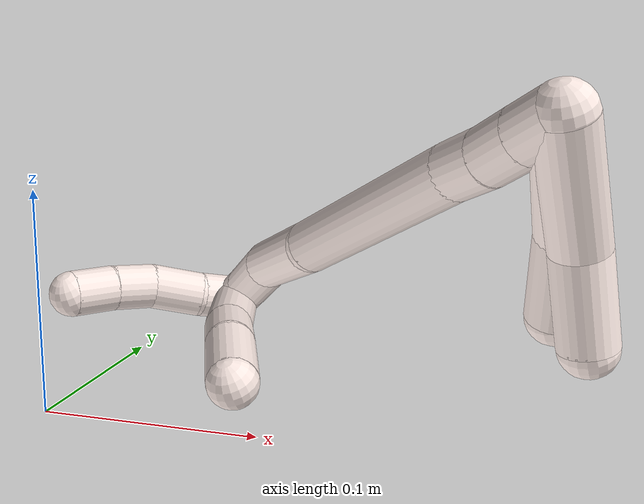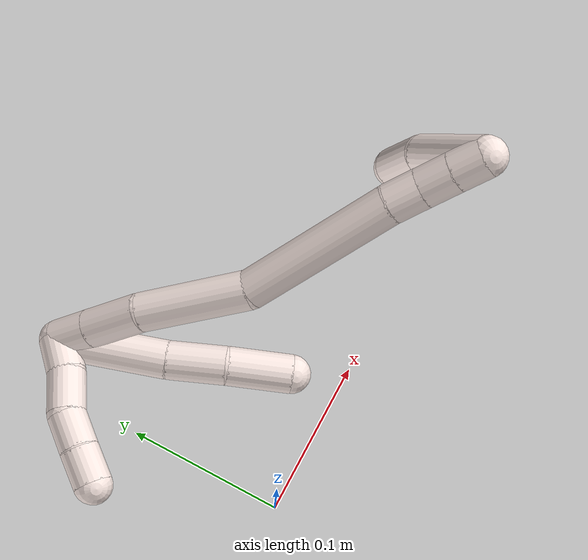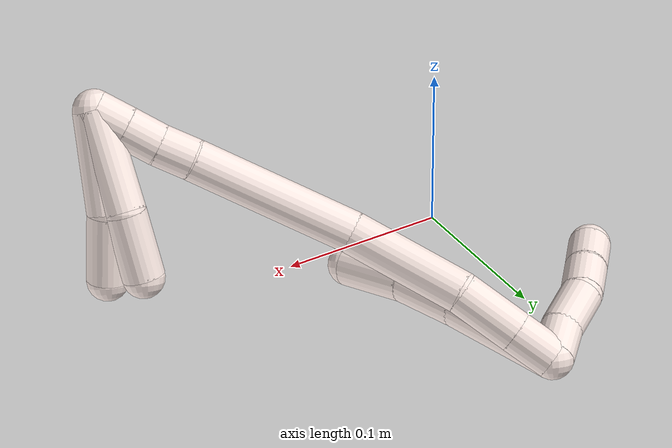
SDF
<sdf version="1.7">
 <world name="default">
  <model name="11">
   <static>0</static>
   <link name="11">
    <collision name="collision-cylinder-e_1_2_8">
     <pose>0.010992 -0.030919 0.013662 1.15473 0.314388 0.20577</pose>
     <geometry><cylinder><radius>0.0125</radius><length>0.071089</length></cylinder></geometry>
     <surface>
      <friction><ode><mu>1.16</mu><mu2>1.16</mu2><slip1>0</slip1><slip2>0</slip2></ode></friction>
      <contact><ode><kp>1e+06</kp><kd>1</kd><max_vel>0</max_vel><min_depth>0.001</min_depth></ode></contact>
     </surface>
    </collision>
    <visual name="visual-cylinder-e_1_2_8">
     <pose>0.010992 -0.030919 0.013662 1.15473 0.314388 0.20577</pose>
     <geometry><cylinder><radius>0.0125</radius><length>0.071089</length></cylinder></geometry>
     <material><ambient>1 0.933333 0.909804 1</ambient></material>
    </visual>
    <collision name="collision-cylinder-e_2_8_9">
     <pose>0.029365 -0.077707 0.034415 1.15055 0.401577 0.262436</pose>
     <geometry><cylinder><radius>0.0125</radius><length>0.03777</length></cylinder></geometry>
     <surface>
      <friction><ode><mu>1.16</mu><mu2>1.16</mu2><slip1>0</slip1><slip2>0</slip2></ode></friction>
      <contact><ode><kp>1e+06</kp><kd>1</kd><max_vel>0</max_vel><min_depth>0.001</min_depth></ode></contact>
     </surface>
    </collision>
    <visual name="visual-cylinder-e_2_8_9">
     <pose>0.029365 -0.077707 0.034415 1.15055 0.401577 0.262436</pose>
     <geometry><cylinder><radius>0.0125</radius><length>0.03777</length></cylinder></geometry>
     <material><ambient>1 0.933333 0.909804 1</ambient></material>
    </visual>
    <collision name="collision-cylinder-e_3_9_6">
     <pose>0.044262 -0.112207 0.045931 1.33765 0.374038 0.296912</pose>
     <geometry><cylinder><radius>0.0125</radius><length>0.041141</length></cylinder></geometry>
     <surface>
      <friction><ode><mu>1.16</mu><mu2>1.16</mu2><slip1>0</slip1><slip2>0</slip2></ode></friction>
      <contact><ode><kp>1e+06</kp><kd>1</kd><max_vel>0</max_vel><min_depth>0.001</min_depth></ode></contact>
     </surface>
    </collision>
    <visual name="visual-cylinder-e_3_9_6">
     <pose>0.044262 -0.112207 0.045931 1.33765 0.374038 0.296912</pose>
     <geometry><cylinder><radius>0.0125</radius><length>0.041141</length></cylinder></geometry>
     <material><ambient>1 0.933333 0.909804 1</ambient></material>
    </visual>
    <collision name="collision-cylinder-e_1_2_10">
     <pose>-0.007813 -0.005994 0.006833 0.720108 -0.710006 -0.277326</pose>
     <geometry><cylinder><radius>0.0125</radius><length>0.023972</length></cylinder></geometry>
     <surface>
      <friction><ode><mu>1.16</mu><mu2>1.16</mu2><slip1>0</slip1><slip2>0</slip2></ode></friction>
      <contact><ode><kp>1e+06</kp><kd>1</kd><max_vel>0</max_vel><min_depth>0.001</min_depth></ode></contact>
     </surface>
    </collision>
    <visual name="visual-cylinder-e_1_2_10">
     <pose>-0.007813 -0.005994 0.006833 0.720108 -0.710006 -0.277326</pose>
     <geometry><cylinder><radius>0.0125</radius><length>0.023972</length></cylinder></geometry>
     <material><ambient>1 0.933333 0.909804 1</ambient></material>
    </visual>
    <collision name="collision-cylinder-e_2_10_11">
     <pose>-0.026612 -0.016645 0.021485 0.53712 -0.879041 -0.257373</pose>
     <geometry><cylinder><radius>0.0125</radius><length>0.028532</length></cylinder></geometry>
     <surface>
      <friction><ode><mu>1.16</mu><mu2>1.16</mu2><slip1>0</slip1><slip2>0</slip2></ode></friction>
      <contact><ode><kp>1e+06</kp><kd>1</kd><max_vel>0</max_vel><min_depth>0.001</min_depth></ode></contact>
     </surface>
    </collision>
    <visual name="visual-cylinder-e_2_10_11">
     <pose>-0.026612 -0.016645 0.021485 0.53712 -0.879041 -0.257373</pose>
     <geometry><cylinder><radius>0.0125</radius><length>0.028532</length></cylinder></geometry>
     <material><ambient>1 0.933333 0.909804 1</ambient></material>
    </visual>
    <collision name="collision-cylinder-e_3_11_12">
     <pose>-0.044871 -0.02876 0.035125 0.908088 -0.655295 -0.328782</pose>
     <geometry><cylinder><radius>0.0125</radius><length>0.023866</length></cylinder></geometry>
     <surface>
      <friction><ode><mu>1.16</mu><mu2>1.16</mu2><slip1>0</slip1><slip2>0</slip2></ode></friction>
      <contact><ode><kp>1e+06</kp><kd>1</kd><max_vel>0</max_vel><min_depth>0.001</min_depth></ode></contact>
     </surface>
    </collision>
    <visual name="visual-cylinder-e_3_11_12">
     <pose>-0.044871 -0.02876 0.035125 0.908088 -0.655295 -0.328782</pose>
     <geometry><cylinder><radius>0.0125</radius><length>0.023866</length></cylinder></geometry>
     <material><ambient>1 0.933333 0.909804 1</ambient></material>
    </visual>
    <collision name="collision-cylinder-e_4_12_5">
     <pose>-0.059386 -0.044171 0.045832 1.01988 -0.659934 -0.378507</pose>
     <geometry><cylinder><radius>0.0125</radius><length>0.02363</length></cylinder></geometry>
     <surface>
      <friction><ode><mu>1.16</mu><mu2>1.16</mu2><slip1>0</slip1><slip2>0</slip2></ode></friction>
      <contact><ode><kp>1e+06</kp><kd>1</kd><max_vel>0</max_vel><min_depth>0.001</min_depth></ode></contact>
     </surface>
    </collision>
    <visual name="visual-cylinder-e_4_12_5">
     <pose>-0.059386 -0.044171 0.045832 1.01988 -0.659934 -0.378507</pose>
     <geometry><cylinder><radius>0.0125</radius><length>0.02363</length></cylinder></geometry>
     <material><ambient>1 0.933333 0.909804 1</ambient></material>
    </visual>
    <collision name="collision-cylinder-e_1_2_13">
     <pose>0.00814 -0.005679 0.008327 0.598561 0.679377 0.217215</pose>
     <geometry><cylinder><radius>0.0125</radius><length>0.025911</length></cylinder></geometry>
     <surface>
      <friction><ode><mu>1.16</mu><mu2>1.16</mu2><slip1>0</slip1><slip2>0</slip2></ode></friction>
      <contact><ode><kp>1e+06</kp><kd>1</kd><max_vel>0</max_vel><min_depth>0.001</min_depth></ode></contact>
     </surface>
    </collision>
    <visual name="visual-cylinder-e_1_2_13">
     <pose>0.00814 -0.005679 0.008327 0.598561 0.679377 0.217215</pose>
     <geometry><cylinder><radius>0.0125</radius><length>0.025911</length></cylinder></geometry>
     <material><ambient>1 0.933333 0.909804 1</ambient></material>
    </visual>
    <collision name="collision-cylinder-e_2_13_14">
     <pose>0.028165 -0.019753 0.029105 0.593217 0.669492 0.211819</pose>
     <geometry><cylinder><radius>0.0125</radius><length>0.038303</length></cylinder></geometry>
     <surface>
      <friction><ode><mu>1.16</mu><mu2>1.16</mu2><slip1>0</slip1><slip2>0</slip2></ode></friction>
      <contact><ode><kp>1e+06</kp><kd>1</kd><max_vel>0</max_vel><min_depth>0.001</min_depth></ode></contact>
     </surface>
    </collision>
    <visual name="visual-cylinder-e_2_13_14">
     <pose>0.028165 -0.019753 0.029105 0.593217 0.669492 0.211819</pose>
     <geometry><cylinder><radius>0.0125</radius><length>0.038303</length></cylinder></geometry>
     <material><ambient>1 0.933333 0.909804 1</ambient></material>
    </visual>
    <collision name="collision-cylinder-e_3_14_15">
     <pose>0.061891 -0.049579 0.060598 0.844377 0.651038 0.300941</pose>
     <geometry><cylinder><radius>0.0125</radius><length>0.072079</length></cylinder></geometry>
     <surface>
      <friction><ode><mu>1.16</mu><mu2>1.16</mu2><slip1>0</slip1><slip2>0</slip2></ode></friction>
      <contact><ode><kp>1e+06</kp><kd>1</kd><max_vel>0</max_vel><min_depth>0.001</min_depth></ode></contact>
     </surface>
    </collision>
    <visual name="visual-cylinder-e_3_14_15">
     <pose>0.061891 -0.049579 0.060598 0.844377 0.651038 0.300941</pose>
     <geometry><cylinder><radius>0.0125</radius><length>0.072079</length></cylinder></geometry>
     <material><ambient>1 0.933333 0.909804 1</ambient></material>
    </visual>
    <collision name="collision-cylinder-e_4_15_16">
     <pose>0.123972 -0.08767 0.1052 0.57762 0.922053 0.293057</pose>
     <geometry><cylinder><radius>0.0125</radius><length>0.101</length></cylinder></geometry>
     <surface>
      <friction><ode><mu>1.16</mu><mu2>1.16</mu2><slip1>0</slip1><slip2>0</slip2></ode></friction>
      <contact><ode><kp>1e+06</kp><kd>1</kd><max_vel>0</max_vel><min_depth>0.001</min_depth></ode></contact>
     </surface>
    </collision>
    <visual name="visual-cylinder-e_4_15_16">
     <pose>0.123972 -0.08767 0.1052 0.57762 0.922053 0.293057</pose>
     <geometry><cylinder><radius>0.0125</radius><length>0.101</length></cylinder></geometry>
     <material><ambient>1 0.933333 0.909804 1</ambient></material>
    </visual>
    <collision name="collision-cylinder-e_5_16_17">
     <pose>0.172336 -0.108831 0.135812 0.727849 0.876445 0.353258</pose>
     <geometry><cylinder><radius>0.0125</radius><length>0.021142</length></cylinder></geometry>
     <surface>
      <friction><ode><mu>1.16</mu><mu2>1.16</mu2><slip1>0</slip1><slip2>0</slip2></ode></friction>
      <contact><ode><kp>1e+06</kp><kd>1</kd><max_vel>0</max_vel><min_depth>0.001</min_depth></ode></contact>
     </surface>
    </collision>
    <visual name="visual-cylinder-e_5_16_17">
     <pose>0.172336 -0.108831 0.135812 0.727849 0.876445 0.353258</pose>
     <geometry><cylinder><radius>0.0125</radius><length>0.021142</length></cylinder></geometry>
     <material><ambient>1 0.933333 0.909804 1</ambient></material>
    </visual>
    <collision name="collision-cylinder-e_6_17_18">
     <pose>0.188301 -0.117482 0.146743 0.614633 0.828109 0.277156</pose>
     <geometry><cylinder><radius>0.0125</radius><length>0.021289</length></cylinder></geometry>
     <surface>
      <friction><ode><mu>1.16</mu><mu2>1.16</mu2><slip1>0</slip1><slip2>0</slip2></ode></friction>
      <contact><ode><kp>1e+06</kp><kd>1</kd><max_vel>0</max_vel><min_depth>0.001</min_depth></ode></contact>
     </surface>
    </collision>
    <visual name="visual-cylinder-e_6_17_18">
     <pose>0.188301 -0.117482 0.146743 0.614633 0.828109 0.277156</pose>
     <geometry><cylinder><radius>0.0125</radius><length>0.021289</length></cylinder></geometry>
     <material><ambient>1 0.933333 0.909804 1</ambient></material>
    </visual>
    <collision name="collision-cylinder-e_7_18_1">
     <pose>0.203613 -0.125679 0.158155 0.631604 0.828464 0.285362</pose>
     <geometry><cylinder><radius>0.0125</radius><length>0.020276</length></cylinder></geometry>
     <surface>
      <friction><ode><mu>1.16</mu><mu2>1.16</mu2><slip1>0</slip1><slip2>0</slip2></ode></friction>
      <contact><ode><kp>1e+06</kp><kd>1</kd><max_vel>0</max_vel><min_depth>0.001</min_depth></ode></contact>
     </surface>
    </collision>
    <visual name="visual-cylinder-e_7_18_1">
     <pose>0.203613 -0.125679 0.158155 0.631604 0.828464 0.285362</pose>
     <geometry><cylinder><radius>0.0125</radius><length>0.020276</length></cylinder></geometry>
     <material><ambient>1 0.933333 0.909804 1</ambient></material>
    </visual>
    <collision name="collision-cylinder-e_1_1_19">
     <pose>0.210266 -0.12834 0.134055 -3.09487 -0.027536 1.06498</pose>
     <geometry><cylinder><radius>0.0125</radius><length>0.05935</length></cylinder></geometry>
     <surface>
      <friction><ode><mu>1.16</mu><mu2>1.16</mu2><slip1>0</slip1><slip2>0</slip2></ode></friction>
      <contact><ode><kp>1e+06</kp><kd>1</kd><max_vel>0</max_vel><min_depth>0.001</min_depth></ode></contact>
     </surface>
    </collision>
    <visual name="visual-cylinder-e_1_1_19">
     <pose>0.210266 -0.12834 0.134055 -3.09487 -0.027536 1.06498</pose>
     <geometry><cylinder><radius>0.0125</radius><length>0.05935</length></cylinder></geometry>
     <material><ambient>1 0.933333 0.909804 1</ambient></material>
    </visual>
    <collision name="collision-cylinder-e_2_19_4">
     <pose>0.208805 -0.132354 0.08484 2.87256 -0.031701 -0.233202</pose>
     <geometry><cylinder><radius>0.0125</radius><length>0.04065</length></cylinder></geometry>
     <surface>
      <friction><ode><mu>1.16</mu><mu2>1.16</mu2><slip1>0</slip1><slip2>0</slip2></ode></friction>
      <contact><ode><kp>1e+06</kp><kd>1</kd><max_vel>0</max_vel><min_depth>0.001</min_depth></ode></contact>
     </surface>
    </collision>
    <visual name="visual-cylinder-e_2_19_4">
     <pose>0.208805 -0.132354 0.08484 2.87256 -0.031701 -0.233202</pose>
     <geometry><cylinder><radius>0.0125</radius><length>0.04065</length></cylinder></geometry>
     <material><ambient>1 0.933333 0.909804 1</ambient></material>
    </visual>
    <collision name="collision-cylinder-e_1_1_20">
     <pose>0.207589 -0.123333 0.134439 -2.9264 -0.116195 0.9879</pose>
     <geometry><cylinder><radius>0.0125</radius><length>0.060283</length></cylinder></geometry>
     <surface>
      <friction><ode><mu>1.16</mu><mu2>1.16</mu2><slip1>0</slip1><slip2>0</slip2></ode></friction>
      <contact><ode><kp>1e+06</kp><kd>1</kd><max_vel>0</max_vel><min_depth>0.001</min_depth></ode></contact>
     </surface>
    </collision>
    <visual name="visual-cylinder-e_1_1_20">
     <pose>0.207589 -0.123333 0.134439 -2.9264 -0.116195 0.9879</pose>
     <geometry><cylinder><radius>0.0125</radius><length>0.060283</length></cylinder></geometry>
     <material><ambient>1 0.933333 0.909804 1</ambient></material>
    </visual>
    <collision name="collision-cylinder-e_2_20_3">
     <pose>0.199618 -0.117715 0.085859 3.1015 -0.227363 -2.79393</pose>
     <geometry><cylinder><radius>0.0125</radius><length>0.039717</length></cylinder></geometry>
     <surface>
      <friction><ode><mu>1.16</mu><mu2>1.16</mu2><slip1>0</slip1><slip2>0</slip2></ode></friction>
      <contact><ode><kp>1e+06</kp><kd>1</kd><max_vel>0</max_vel><min_depth>0.001</min_depth></ode></contact>
     </surface>
    </collision>
    <visual name="visual-cylinder-e_2_20_3">
     <pose>0.199618 -0.117715 0.085859 3.1015 -0.227363 -2.79393</pose>
     <geometry><cylinder><radius>0.0125</radius><length>0.039717</length></cylinder></geometry>
     <material><ambient>1 0.933333 0.909804 1</ambient></material>
    </visual>
    <collision name="collision-sphere-3">
     <pose>0.195142 -0.118491 0.066527 0 -0 0</pose>
     <geometry><sphere><radius>0.0125</radius></sphere></geometry>
     <surface>
      <friction><ode><mu>1.16</mu><mu2>1.16</mu2><slip1>0</slip1><slip2>0</slip2></ode></friction>
      <contact><ode><kp>1e+06</kp><kd>1</kd><max_vel>0</max_vel><min_depth>0.001</min_depth></ode></contact>
     </surface>
    </collision>
    <visual name="visual-sphere-3">
     <pose>0.195142 -0.118491 0.066527 0 -0 0</pose>
     <geometry><sphere><radius>0.0125</radius></sphere></geometry>
     <material><ambient>1 0.933333 0.909804 1</ambient></material>
    </visual>
    <collision name="collision-sphere-20">
     <pose>0.204094 -0.11694 0.105191 0 -0 0</pose>
     <geometry><sphere><radius>0.0125</radius></sphere></geometry>
     <surface>
      <friction><ode><mu>1.16</mu><mu2>1.16</mu2><slip1>0</slip1><slip2>0</slip2></ode></friction>
      <contact><ode><kp>1e+06</kp><kd>1</kd><max_vel>0</max_vel><min_depth>0.001</min_depth></ode></contact>
     </surface>
    </collision>
    <visual name="visual-sphere-20">
     <pose>0.204094 -0.11694 0.105191 0 -0 0</pose>
     <geometry><sphere><radius>0.0125</radius></sphere></geometry>
     <material><ambient>1 0.933333 0.909804 1</ambient></material>
    </visual>
    <collision name="collision-sphere-4">
     <pose>0.208161 -0.137754 0.065256 0 -0 0</pose>
     <geometry><sphere><radius>0.0125</radius></sphere></geometry>
     <surface>
      <friction><ode><mu>1.16</mu><mu2>1.16</mu2><slip1>0</slip1><slip2>0</slip2></ode></friction>
      <contact><ode><kp>1e+06</kp><kd>1</kd><max_vel>0</max_vel><min_depth>0.001</min_depth></ode></contact>
     </surface>
    </collision>
    <visual name="visual-sphere-4">
     <pose>0.208161 -0.137754 0.065256 0 -0 0</pose>
     <geometry><sphere><radius>0.0125</radius></sphere></geometry>
     <material><ambient>1 0.933333 0.909804 1</ambient></material>
    </visual>
    <collision name="collision-sphere-11">
     <pose>-0.037599 -0.021301 0.029303 0 -0 0</pose>
     <geometry><sphere><radius>0.0125</radius></sphere></geometry>
     <surface>
      <friction><ode><mu>1.16</mu><mu2>1.16</mu2><slip1>0</slip1><slip2>0</slip2></ode></friction>
      <contact><ode><kp>1e+06</kp><kd>1</kd><max_vel>0</max_vel><min_depth>0.001</min_depth></ode></contact>
     </surface>
    </collision>
    <visual name="visual-sphere-11">
     <pose>-0.037599 -0.021301 0.029303 0 -0 0</pose>
     <geometry><sphere><radius>0.0125</radius></sphere></geometry>
     <material><ambient>1 0.933333 0.909804 1</ambient></material>
    </visual>
    <collision name="collision-sphere-10">
     <pose>-0.015626 -0.011989 0.013666 0 -0 0</pose>
     <geometry><sphere><radius>0.0125</radius></sphere></geometry>
     <surface>
      <friction><ode><mu>1.16</mu><mu2>1.16</mu2><slip1>0</slip1><slip2>0</slip2></ode></friction>
      <contact><ode><kp>1e+06</kp><kd>1</kd><max_vel>0</max_vel><min_depth>0.001</min_depth></ode></contact>
     </surface>
    </collision>
    <visual name="visual-sphere-10">
     <pose>-0.015626 -0.011989 0.013666 0 -0 0</pose>
     <geometry><sphere><radius>0.0125</radius></sphere></geometry>
     <material><ambient>1 0.933333 0.909804 1</ambient></material>
    </visual>
    <collision name="collision-sphere-6">
     <pose>0.051778 -0.130838 0.050355 0 -0 0</pose>
     <geometry><sphere><radius>0.0125</radius></sphere></geometry>
     <surface>
      <friction><ode><mu>1.16</mu><mu2>1.16</mu2><slip1>0</slip1><slip2>0</slip2></ode></friction>
      <contact><ode><kp>1e+06</kp><kd>1</kd><max_vel>0</max_vel><min_depth>0.001</min_depth></ode></contact>
     </surface>
    </collision>
    <visual name="visual-sphere-6">
     <pose>0.051778 -0.130838 0.050355 0 -0 0</pose>
     <geometry><sphere><radius>0.0125</radius></sphere></geometry>
     <material><ambient>1 0.933333 0.909804 1</ambient></material>
    </visual>
    <collision name="collision-sphere-9">
     <pose>0.036746 -0.093577 0.041507 0 -0 0</pose>
     <geometry><sphere><radius>0.0125</radius></sphere></geometry>
     <surface>
      <friction><ode><mu>1.16</mu><mu2>1.16</mu2><slip1>0</slip1><slip2>0</slip2></ode></friction>
      <contact><ode><kp>1e+06</kp><kd>1</kd><max_vel>0</max_vel><min_depth>0.001</min_depth></ode></contact>
     </surface>
    </collision>
    <visual name="visual-sphere-9">
     <pose>0.036746 -0.093577 0.041507 0 -0 0</pose>
     <geometry><sphere><radius>0.0125</radius></sphere></geometry>
     <material><ambient>1 0.933333 0.909804 1</ambient></material>
    </visual>
    <collision name="collision-sphere-2">
     <geometry><sphere><radius>0.0125</radius></sphere></geometry>
     <surface>
      <friction><ode><mu>1.16</mu><mu2>1.16</mu2><slip1>0</slip1><slip2>0</slip2></ode></friction>
      <contact><ode><kp>1e+06</kp><kd>1</kd><max_vel>0</max_vel><min_depth>0.001</min_depth></ode></contact>
     </surface>
    </collision>
    <visual name="visual-sphere-2">
     <geometry><sphere><radius>0.0125</radius></sphere></geometry>
     <material><ambient>1 0.933333 0.909804 1</ambient></material>
    </visual>
    <collision name="collision-sphere-19">
     <pose>0.209449 -0.126955 0.104424 0 -0 0</pose>
     <geometry><sphere><radius>0.0125</radius></sphere></geometry>
     <surface>
      <friction><ode><mu>1.16</mu><mu2>1.16</mu2><slip1>0</slip1><slip2>0</slip2></ode></friction>
      <contact><ode><kp>1e+06</kp><kd>1</kd><max_vel>0</max_vel><min_depth>0.001</min_depth></ode></contact>
     </surface>
    </collision>
    <visual name="visual-sphere-19">
     <pose>0.209449 -0.126955 0.104424 0 -0 0</pose>
     <geometry><sphere><radius>0.0125</radius></sphere></geometry>
     <material><ambient>1 0.933333 0.909804 1</ambient></material>
    </visual>
    <collision name="collision-sphere-8">
     <pose>0.021983 -0.061837 0.027323 0 -0 0</pose>
     <geometry><sphere><radius>0.0125</radius></sphere></geometry>
     <surface>
      <friction><ode><mu>1.16</mu><mu2>1.16</mu2><slip1>0</slip1><slip2>0</slip2></ode></friction>
      <contact><ode><kp>1e+06</kp><kd>1</kd><max_vel>0</max_vel><min_depth>0.001</min_depth></ode></contact>
     </surface>
    </collision>
    <visual name="visual-sphere-8">
     <pose>0.021983 -0.061837 0.027323 0 -0 0</pose>
     <geometry><sphere><radius>0.0125</radius></sphere></geometry>
     <material><ambient>1 0.933333 0.909804 1</ambient></material>
    </visual>
    <collision name="collision-sphere-12">
     <pose>-0.052143 -0.036218 0.040946 0 -0 0</pose>
     <geometry><sphere><radius>0.0125</radius></sphere></geometry>
     <surface>
      <friction><ode><mu>1.16</mu><mu2>1.16</mu2><slip1>0</slip1><slip2>0</slip2></ode></friction>
      <contact><ode><kp>1e+06</kp><kd>1</kd><max_vel>0</max_vel><min_depth>0.001</min_depth></ode></contact>
     </surface>
    </collision>
    <visual name="visual-sphere-12">
     <pose>-0.052143 -0.036218 0.040946 0 -0 0</pose>
     <geometry><sphere><radius>0.0125</radius></sphere></geometry>
     <material><ambient>1 0.933333 0.909804 1</ambient></material>
    </visual>
    <collision name="collision-sphere-5">
     <pose>-0.06663 -0.052125 0.050718 0 -0 0</pose>
     <geometry><sphere><radius>0.0125</radius></sphere></geometry>
     <surface>
      <friction><ode><mu>1.16</mu><mu2>1.16</mu2><slip1>0</slip1><slip2>0</slip2></ode></friction>
      <contact><ode><kp>1e+06</kp><kd>1</kd><max_vel>0</max_vel><min_depth>0.001</min_depth></ode></contact>
     </surface>
    </collision>
    <visual name="visual-sphere-5">
     <pose>-0.06663 -0.052125 0.050718 0 -0 0</pose>
     <geometry><sphere><radius>0.0125</radius></sphere></geometry>
     <material><ambient>1 0.933333 0.909804 1</ambient></material>
    </visual>
    <collision name="collision-sphere-13">
     <pose>0.01628 -0.011358 0.016653 0 -0 0</pose>
     <geometry><sphere><radius>0.0125</radius></sphere></geometry>
     <surface>
      <friction><ode><mu>1.16</mu><mu2>1.16</mu2><slip1>0</slip1><slip2>0</slip2></ode></friction>
      <contact><ode><kp>1e+06</kp><kd>1</kd><max_vel>0</max_vel><min_depth>0.001</min_depth></ode></contact>
     </surface>
    </collision>
    <visual name="visual-sphere-13">
     <pose>0.01628 -0.011358 0.016653 0 -0 0</pose>
     <geometry><sphere><radius>0.0125</radius></sphere></geometry>
     <material><ambient>1 0.933333 0.909804 1</ambient></material>
    </visual>
    <collision name="collision-sphere-14">
     <pose>0.040051 -0.028148 0.041557 0 -0 0</pose>
     <geometry><sphere><radius>0.0125</radius></sphere></geometry>
     <surface>
      <friction><ode><mu>1.16</mu><mu2>1.16</mu2><slip1>0</slip1><slip2>0</slip2></ode></friction>
      <contact><ode><kp>1e+06</kp><kd>1</kd><max_vel>0</max_vel><min_depth>0.001</min_depth></ode></contact>
     </surface>
    </collision>
    <visual name="visual-sphere-14">
     <pose>0.040051 -0.028148 0.041557 0 -0 0</pose>
     <geometry><sphere><radius>0.0125</radius></sphere></geometry>
     <material><ambient>1 0.933333 0.909804 1</ambient></material>
    </visual>
    <collision name="collision-sphere-15">
     <pose>0.083731 -0.07101 0.079639 0 -0 0</pose>
     <geometry><sphere><radius>0.0125</radius></sphere></geometry>
     <surface>
      <friction><ode><mu>1.16</mu><mu2>1.16</mu2><slip1>0</slip1><slip2>0</slip2></ode></friction>
      <contact><ode><kp>1e+06</kp><kd>1</kd><max_vel>0</max_vel><min_depth>0.001</min_depth></ode></contact>
     </surface>
    </collision>
    <visual name="visual-sphere-15">
     <pose>0.083731 -0.07101 0.079639 0 -0 0</pose>
     <geometry><sphere><radius>0.0125</radius></sphere></geometry>
     <material><ambient>1 0.933333 0.909804 1</ambient></material>
    </visual>
    <collision name="collision-sphere-16">
     <pose>0.164212 -0.104331 0.130762 0 -0 0</pose>
     <geometry><sphere><radius>0.0125</radius></sphere></geometry>
     <surface>
      <friction><ode><mu>1.16</mu><mu2>1.16</mu2><slip1>0</slip1><slip2>0</slip2></ode></friction>
      <contact><ode><kp>1e+06</kp><kd>1</kd><max_vel>0</max_vel><min_depth>0.001</min_depth></ode></contact>
     </surface>
    </collision>
    <visual name="visual-sphere-16">
     <pose>0.164212 -0.104331 0.130762 0 -0 0</pose>
     <geometry><sphere><radius>0.0125</radius></sphere></geometry>
     <material><ambient>1 0.933333 0.909804 1</ambient></material>
    </visual>
    <collision name="collision-sphere-17">
     <pose>0.18046 -0.113331 0.140862 0 -0 0</pose>
     <geometry><sphere><radius>0.0125</radius></sphere></geometry>
     <surface>
      <friction><ode><mu>1.16</mu><mu2>1.16</mu2><slip1>0</slip1><slip2>0</slip2></ode></friction>
      <contact><ode><kp>1e+06</kp><kd>1</kd><max_vel>0</max_vel><min_depth>0.001</min_depth></ode></contact>
     </surface>
    </collision>
    <visual name="visual-sphere-17">
     <pose>0.18046 -0.113331 0.140862 0 -0 0</pose>
     <geometry><sphere><radius>0.0125</radius></sphere></geometry>
     <material><ambient>1 0.933333 0.909804 1</ambient></material>
    </visual>
    <collision name="collision-sphere-18">
     <pose>0.196142 -0.121633 0.152624 0 -0 0</pose>
     <geometry><sphere><radius>0.0125</radius></sphere></geometry>
     <surface>
      <friction><ode><mu>1.16</mu><mu2>1.16</mu2><slip1>0</slip1><slip2>0</slip2></ode></friction>
      <contact><ode><kp>1e+06</kp><kd>1</kd><max_vel>0</max_vel><min_depth>0.001</min_depth></ode></contact>
     </surface>
    </collision>
    <visual name="visual-sphere-18">
     <pose>0.196142 -0.121633 0.152624 0 -0 0</pose>
     <geometry><sphere><radius>0.0125</radius></sphere></geometry>
     <material><ambient>1 0.933333 0.909804 1</ambient></material>
    </visual>
    <collision name="collision-sphere-1">
     <pose>0.211083 -0.129726 0.163687 0 -0 0</pose>
     <geometry><sphere><radius>0.0125</radius></sphere></geometry>
     <surface>
      <friction><ode><mu>1.16</mu><mu2>1.16</mu2><slip1>0</slip1><slip2>0</slip2></ode></friction>
      <contact><ode><kp>1e+06</kp><kd>1</kd><max_vel>0</max_vel><min_depth>0.001</min_depth></ode></contact>
     </surface>
    </collision>
    <visual name="visual-sphere-1">
     <pose>0.211083 -0.129726 0.163687 0 -0 0</pose>
     <geometry><sphere><radius>0.0125</radius></sphere></geometry>
     <material><ambient>1 0.933333 0.909804 1</ambient></material>
    </visual>
    <inertial>
     <pose>0.09567 -0.077184 0.073738 0 -0 0</pose>
     <mass>0.75</mass>
     <inertia><ixx>0.000236</ixx><ixy>0</ixy><ixz>0</ixz><iyy>0.000169</iyy><iyz>0</iyz><izz>-3e-06</izz></inertia>
    </inertial>
   </link>
   <pose>0.028102 0.171141 0.011485 0.42604 -0.161626 -0.016799</pose>
  </model>
 </world>
</sdf>
